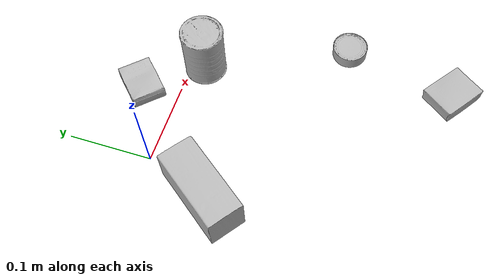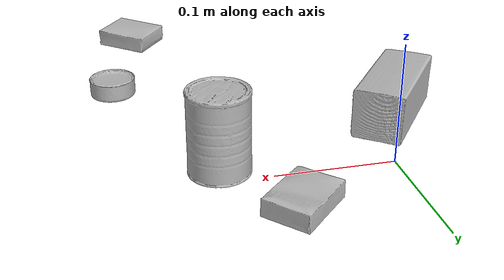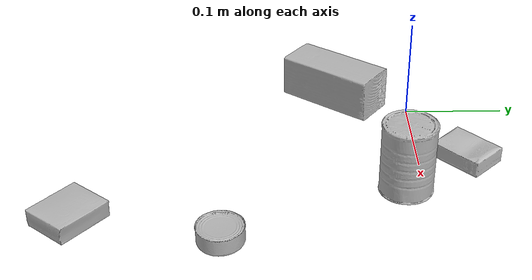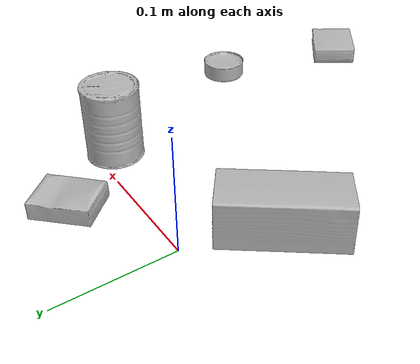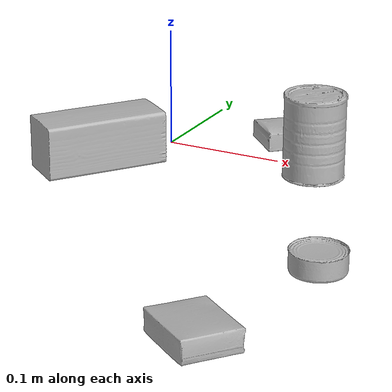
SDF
<sdf version="1.4">
  <world name="default">
    <light name="light1" type="point">
      <pose>0 0 1 0 0 0</pose>
      <diffuse>3 3 3 1</diffuse>
      <specular>3 3 3 1</specular>
    </light>
    <light name="light2" type="point">
      <pose>0 0.5 2 0 0 0</pose>
      <diffuse>1 1 1 1</diffuse>
      <specular>1 1 1 1</specular>
    </light>
    <light name="light3" type="point">
      <pose>0 0.5 2 0 0 0</pose>
      <diffuse>3 3 3 1</diffuse>
      <specular>3 3 3 1</specular>
    </light>
    <scene>
      <ambient>0.7 0.7 0.7</ambient>
    </scene>
    <model name="box1">
      <link name="link_box1">
        <collision name="default">
          <geometry>
            <mesh>
              <uri>model://pudding_box/collision_meshes/collision.obj</uri>
              <scale>0.5 0.5 0.5</scale>
            </mesh>
          </geometry>
          <surface>
            <friction>
              <ode>
                <mu>0.5</mu>
                <mu2>0.5</mu2>
              </ode>
            </friction>
          <contact>
        <ode>
            <max_vel>0</max_vel>
            <min_depth>0.0001</min_depth>
            <kp>1e8</kp>
        </ode>
    </contact></surface>
        </collision>
        <visual name="default">
          <geometry>
            <mesh>
              <uri>model://pudding_box/visual_meshes/visual.dae</uri>
              <scale>0.5 0.5 0.5</scale>
            </mesh>
          </geometry>
        </visual>
        <inertial>
          <mass>0.03999795392155647</mass>
          <pose>0.00024474109522998333 0.0004033942532259971 -0.0002594413817860186 0.005213101299265121 -0.006603799659933957 0.020079830747700592</pose>
          <inertia>
            <ixx>1.1303907e-05</ixx>
            <iyy>7.605349e-06</iyy>
            <izz>1.6693173e-05</izz>
            <ixy>0</ixy>
            <ixz>0</ixz>
            <iyz>0</iyz>
          </inertia>
        </inertial>
      </link>
      <pose>0.18360237777233124 -0.3158474564552307 0.009862901642918587 0.02234816084934224 -0.011391971203801783 -2.220649873288332</pose>
    </model>
    <model name="box2">
      <link name="link_box2">
        <collision name="default">
          <geometry>
            <mesh>
              <uri>model://cracker_box/collision_meshes/collision.obj</uri>
              <scale>0.25 0.25 0.25</scale>
            </mesh>
          </geometry>
          <surface>
            <friction>
              <ode>
                <mu>0.5</mu>
                <mu2>0.5</mu2>
              </ode>
            </friction>
          <contact>
        <ode>
            <max_vel>0</max_vel>
            <min_depth>0.0001</min_depth>
            <kp>1e8</kp>
        </ode>
    </contact></surface>
        </collision>
        <visual name="default">
          <geometry>
            <mesh>
              <uri>model://cracker_box/visual_meshes/visual.dae</uri>
              <scale>0.25 0.25 0.25</scale>
            </mesh>
          </geometry>
        </visual>
        <inertial>
          <mass>0.046595875173807144</mass>
          <pose>0.00023660322767682374 6.358561950037256e-05 -0.0004257383698131889 -0.00031620768958073674 -0.011106491463008503 0.002546795235494827</pose>
          <inertia>
            <ixx>7.407444e-06</ixx>
            <iyy>1.2231146e-05</iyy>
            <izz>1.7454966e-05</izz>
            <ixy>0</ixy>
            <ixz>0</ixz>
            <iyz>0</iyz>
          </inertia>
        </inertial>
      </link>
      <pose>0.09075947105884552 0.04708242788910866 0.009120453149080276 -0.011787982417588208 -0.007367194921218048 -2.375660046635122</pose>
    </model>
    <model name="box3">
      <link name="link_box3">
        <collision name="default">
          <geometry>
            <mesh>
              <uri>model://wood_block/collision_meshes/collision.obj</uri>
              <scale>0.5 0.5 0.5</scale>
            </mesh>
          </geometry>
          <surface>
            <friction>
              <ode>
                <mu>0.5</mu>
                <mu2>0.5</mu2>
              </ode>
            </friction>
          <contact>
        <ode>
            <max_vel>0</max_vel>
            <min_depth>0.0001</min_depth>
            <kp>1e8</kp>
        </ode>
    </contact></surface>
        </collision>
        <visual name="default">
          <geometry>
            <mesh>
              <uri>model://wood_block/visual_meshes/visual.dae</uri>
              <scale>0.5 0.5 0.5</scale>
            </mesh>
          </geometry>
        </visual>
        <inertial>
          <mass>0.28600308299064636</mass>
          <pose>-2.9066577553749084e-06 -0.000285404734313488 0.00013204291462898254 -0.052207212015849935 -0.005192697210617926 -0.006861377963206113</pose>
          <inertia>
            <ixx>9.567885e-05</ixx>
            <iyy>0.00030224954</iyy>
            <izz>0.00030111894</izz>
            <ixy>0</ixy>
            <ixz>0</ixz>
            <iyz>0</iyz>
          </inertia>
        </inertial>
      </link>
      <pose>-0.028041429817676544 -0.0746278241276741 0.022629264742136 -0.005208390220608228 0.00571873034751399 0.9248455759695828</pose>
    </model>
    <model name="can1">
      <link name="link_can1">
        <collision name="default">
          <geometry>
            <mesh>
              <uri>model://master_chef_can/collision_meshes/collision.obj</uri>
              <scale>0.5 0.5 0.5</scale>
            </mesh>
          </geometry>
          <surface>
            <friction>
              <ode>
                <mu>0.5</mu>
                <mu2>0.5</mu2>
              </ode>
            </friction>
          <contact>
        <ode>
            <max_vel>0</max_vel>
            <min_depth>0.0001</min_depth>
            <kp>1e8</kp>
        </ode>
    </contact></surface>
        </collision>
        <visual name="default">
          <geometry>
            <mesh>
              <uri>model://master_chef_can/visual_meshes/visual.dae</uri>
              <scale>0.5 0.5 0.5</scale>
            </mesh>
          </geometry>
        </visual>
        <inertial>
          <mass>0.116209015250206</mass>
          <pose>-4.661964703700505e-05 1.3926850783718692e-07 -5.0799026212189347e-05 -0.001799512795725948 0.0006479254888938259 -0.6102617322721998</pose>
          <inertia>
            <ixx>6.820682e-05</ixx>
            <iyy>6.7704816e-05</iyy>
            <izz>3.768948e-05</izz>
            <ixy>0</ixy>
            <ixz>0</ixz>
            <iyz>0</iyz>
          </inertia>
        </inertial>
      </link>
      <pose>0.13950631022453308 -0.017339318990707397 0.035301994532346725 -1.252765159457791e-06 -1.008977434935231e-06 1.489691331178769</pose>
    </model>
    <model name="can2">
      <link name="link_can2">
        <collision name="default">
          <geometry>
            <mesh>
              <uri>model://tuna_fish_can/collision_meshes/collision.obj</uri>
              <scale>0.5 0.5 0.5</scale>
            </mesh>
          </geometry>
          <surface>
            <friction>
              <ode>
                <mu>0.5</mu>
                <mu2>0.5</mu2>
              </ode>
            </friction>
          <contact>
        <ode>
            <max_vel>0</max_vel>
            <min_depth>0.0001</min_depth>
            <kp>1e8</kp>
        </ode>
    </contact></surface>
        </collision>
        <visual name="default">
          <geometry>
            <mesh>
              <uri>model://tuna_fish_can/visual_meshes/visual.dae</uri>
              <scale>0.5 0.5 0.5</scale>
            </mesh>
          </geometry>
        </visual>
        <inertial>
          <mass>0.017585277557373047</mass>
          <pose>-2.03625786525663e-05 -7.2565176196803804e-06 -0.000526902440469712 -0.0017944765250671837 0.00017163661440384507 0.24054644931605637</pose>
          <inertia>
            <ixx>2.3775558e-06</ixx>
            <iyy>2.3676464e-06</iyy>
            <izz>4.0683376e-06</izz>
            <ixy>0</ixy>
            <ixz>0</ixz>
            <iyz>0</iyz>
          </inertia>
        </inertial>
      </link>
      <pose>0.21208485960960388 -0.18280208110809326 0.00851999968290329 1.286036407529853e-08 -1.397491377018034e-08 -1.513064044806169</pose>
    </model>
  <physics type="ode">
      <max_contacts>50</max_contacts>
      <ode>
        <solver>
          <type>quick</type>
          <iters>75</iters>
        </solver>
        <constraints>
          <contact_max_correcting_vel>0</contact_max_correcting_vel>
          <contact_surface_layer>0</contact_surface_layer>
        </constraints>
      </ode>
    </physics></world>
</sdf>
